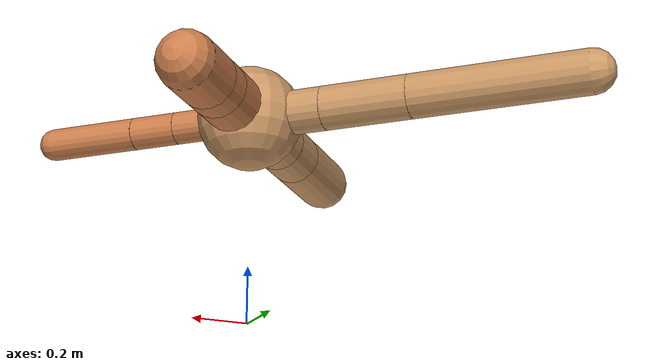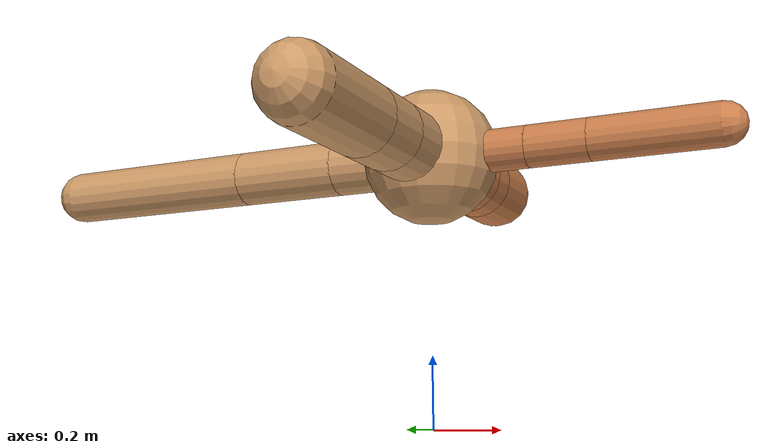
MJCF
<?xml version="1.0" ?>
<mujoco model="ant">

	<compiler angle="degree" coordinate="local" inertiafromgeom="true"/>

	<option integrator="RK4" timestep="0.01"/>

	<custom>

		<numeric data="0.0 0.0 0.55 1.0 0.0 0.0 0.0 0.0 1.0 0.0 -1.0 0.0 -1.0 0.0 1.0" name="init_qpos"/>

	</custom>

	<default>

		<joint armature="1" damping="1" limited="true"/>

		<geom conaffinity="0" condim="3" density="5.0" friction="1.5 0.1 0.1" margin="0.01" rgba="0.8 0.6 0.4 1"/>

	</default>

	<worldbody>

		<body name="torso" pos="0 0 0.75">

			<geom name="torso_geom" pos="0 0 0" size="0.18799061179625776" type="sphere"/>

			<!--joint armature="0" damping="0" limited="false" margin="0.01" name="root" pos="0 0 0" type="free"/-->

			<body name="front_left_leg" pos="0 0 0">

				<geom fromto="0 0 0 0.2 0.2 0" name="aux_1_geom" size="0.10475623575404477" type="capsule" rgba=".8 .5 .3 1"/>

				<body name="aux_1" pos="0.2 0.2 0">

					<joint axis="0 0 1" name="hip_1" pos="0.0 0.0 0.0" range="-40 40" type="hinge"/>

					<geom fromto="0 0 0 0.06141982787583429 0.06141982787583429 0" name="left_leg_geom" size="0.10475623575404477" type="capsule" rgba=".8 .5 .3 1"/>

					<body pos="0.06141982787583429 0.06141982787583429 0" name="front_left_foot">

						<joint axis="-1 1 0" name="ankle_1" pos="0.0 0.0 0.0" range="30 100" type="hinge"/>

						<geom fromto="0 0 0 0.12283965575166858 0.12283965575166858 0" name="left_ankle_geom" size="0.10475623575404477" type="capsule" rgba=".8 .5 .3 1"/>

					</body>

				</body>

			</body>

			<body name="front_right_leg" pos="0 0 0">

				<geom fromto="0 0 0 -0.2 0.2 0" name="aux_2_geom" size="0.07918520170623654" type="capsule"/>

				<body name="aux_2" pos="-0.2 0.2 0">

					<joint axis="0 0 1" name="hip_2" pos="0.0 0.0 0.0" range="-40 40" type="hinge"/>

					<geom fromto="0 0 0 -0.22193127129928247 0.22193127129928247 0" name="right_leg_geom" size="0.07918520170623654" type="capsule"/>

					<body pos="-0.22193127129928247 0.22193127129928247 0" name="front_right_foot">

						<joint axis="1 1 0" name="ankle_2" pos="0.0 0.0 0.0" range="-100 -30" type="hinge"/>

						<geom fromto="0 0 0 -0.44386254259856495 0.44386254259856495 0" name="right_ankle_geom" size="0.07918520170623654" type="capsule"/>

					</body>

				</body>

			</body>

			<body name="left_back_leg" pos="0 0 0">

				<geom fromto="0 0 0 -0.2 -0.2 0" name="aux_3_geom" size="0.09843255318893804" type="capsule"/>

				<body name="aux_3" pos="-0.2 -0.2 0">

					<joint axis="0 0 1" name="hip_3" pos="0.0 0.0 0.0" range="-40 40" type="hinge"/>

					<geom fromto="0 0 0 -0.11203787207887968 -0.11203787207887968 0" name="back_leg_geom" size="0.09843255318893804" type="capsule"/>

					<body pos="-0.11203787207887968 -0.11203787207887968 0" name="left_back_foot">

						<joint axis="-1 1 0" name="ankle_3" pos="0.0 0.0 0.0" range="-100 -30" type="hinge"/>

						<geom fromto="0 0 0 -0.22407574415775935 -0.22407574415775935 0" name="third_ankle_geom" size="0.09843255318893804" type="capsule"/>

					</body>

				</body>

			</body>

			<body name="right_back_leg" pos="0 0 0">

				<geom fromto="0 0 0 0.2 -0.2 0" name="aux_4_geom" size="0.05835793803254388" type="capsule" rgba=".8 .5 .3 1"/>

				<body name="aux_4" pos="0.2 -0.2 0">

					<joint axis="0 0 1" name="hip_4" pos="0.0 0.0 0.0" range="-40 40" type="hinge"/>

					<geom fromto="0 0 0 0.11792282191366579 -0.11792282191366579 0" name="rightback_leg_geom" size="0.05835793803254388" type="capsule" rgba=".8 .5 .3 1"/>

					<body pos="0.11792282191366579 -0.11792282191366579 0" name="right_back_foot">

						<joint axis="1 1 0" name="ankle_4" pos="0.0 0.0 0.0" range="30 100" type="hinge"/>

						<geom fromto="0 0 0 0.23584564382733159 -0.23584564382733159 0" name="fourth_ankle_geom" size="0.05835793803254388" type="capsule" rgba=".8 .5 .3 1"/>

					</body>

				</body>

			</body>

		</body>

	</worldbody>

	<actuator>

		<motor ctrllimited="true" ctrlrange="-1.0 1.0" joint="hip_4" gear="150"/>

		<motor ctrllimited="true" ctrlrange="-1.0 1.0" joint="ankle_4" gear="150"/>

		<motor ctrllimited="true" ctrlrange="-1.0 1.0" joint="hip_1" gear="150"/>

		<motor ctrllimited="true" ctrlrange="-1.0 1.0" joint="ankle_1" gear="150"/>

		<motor ctrllimited="true" ctrlrange="-1.0 1.0" joint="hip_2" gear="150"/>

		<motor ctrllimited="true" ctrlrange="-1.0 1.0" joint="ankle_2" gear="150"/>

		<motor ctrllimited="true" ctrlrange="-1.0 1.0" joint="hip_3" gear="150"/>

		<motor ctrllimited="true" ctrlrange="-1.0 1.0" joint="ankle_3" gear="150"/>

	</actuator>

</mujoco>
